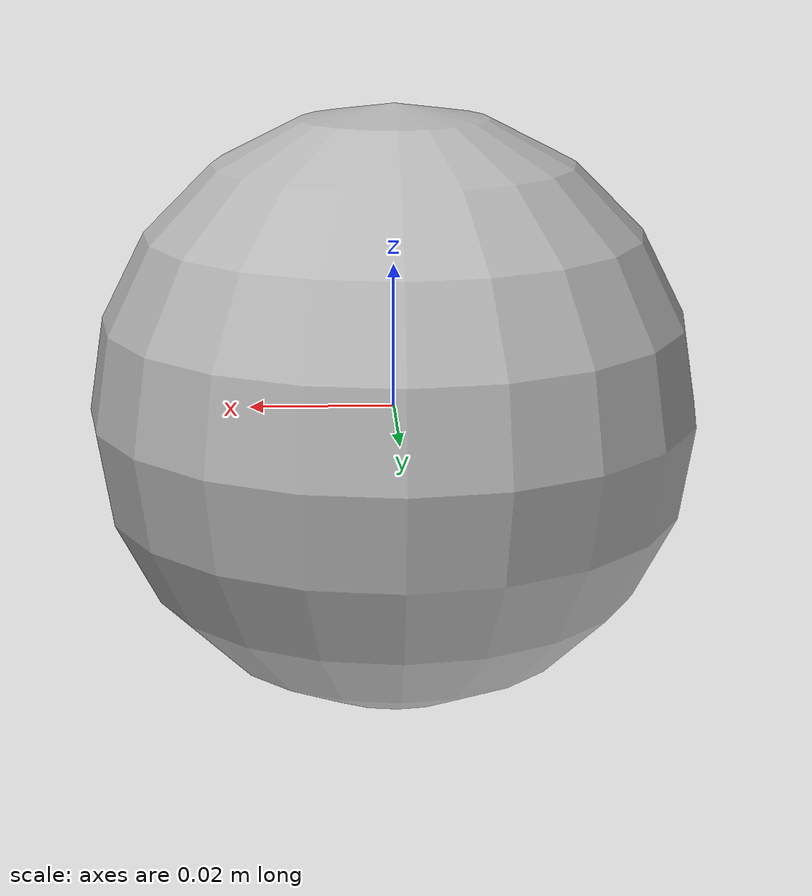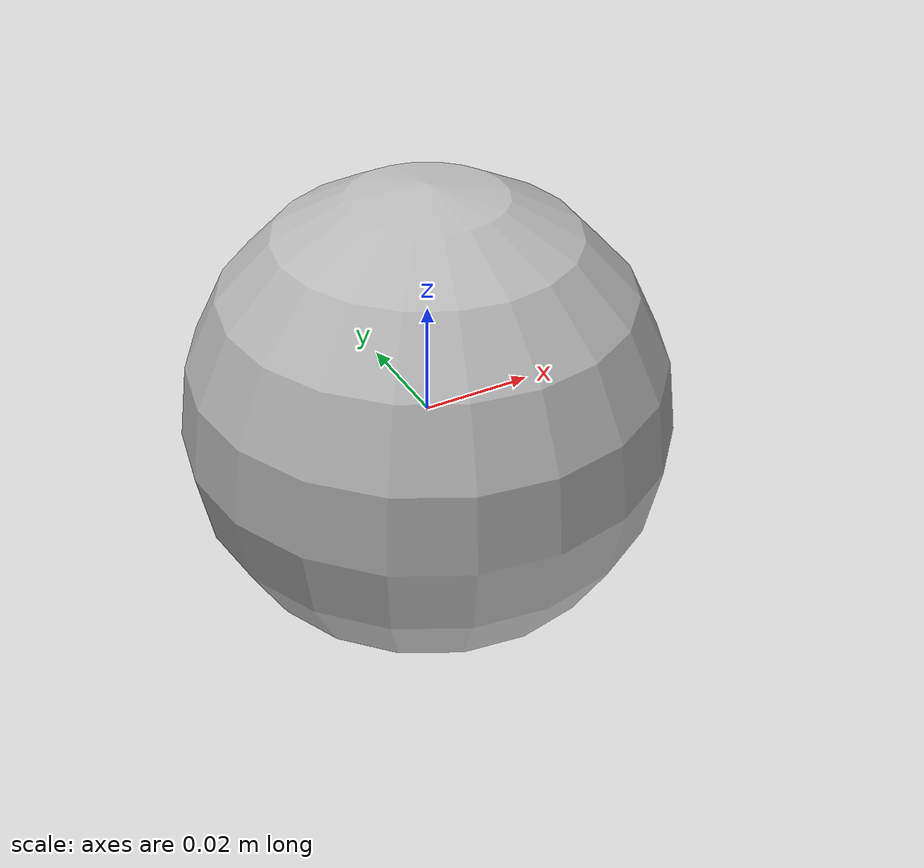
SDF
<?xml version="1.0"?>
<!-- GENERATED by src/gvs_arm/generate_sdf.py from src/gvs_arm/params.py.
     Do not edit by hand: regenerate, and a test asserts byte-equality. -->
<sdf version="1.9">
  <model name="gvs_pushrod9_o2">

    <link name="base"><inertial><mass>0.027027027</mass><inertia><ixx>1.90702703e-05</ixx><ixy>0</ixy><ixz>0</ixz><iyy>1.90702703e-05</iyy><iyz>0</iyz><izz>1.90702703e-05</izz></inertia></inertial></link>

    <!-- segment 0: the sphere radius follows the taper -->
    <link name="seg0_sub0">
      <inertial><mass>0.027027027</mass><inertia><ixx>1.90702703e-05</ixx><ixy>0</ixy><ixz>0</ixz><iyy>1.90702703e-05</iyy><iyz>0</iyz><izz>1.90702703e-05</izz></inertia></inertial>
      <collision name="seg0_sub0_collision"><geometry>
        <sphere><radius>0.042</radius></sphere>
      </geometry></collision>
      <visual name="seg0_sub0_visual"><geometry>
        <sphere><radius>0.042</radius></sphere>
      </geometry></visual>
    </link>
    <link name="seg0_sub1">
      <inertial><mass>0.027027027</mass><inertia><ixx>1.85442192e-05</ixx><ixy>0</ixy><ixz>0</ixz><iyy>1.85442192e-05</iyy><iyz>0</iyz><izz>1.85442192e-05</izz></inertia></inertial>
      <collision name="seg0_sub1_collision"><geometry>
        <sphere><radius>0.0414166667</radius></sphere>
      </geometry></collision>
      <visual name="seg0_sub1_visual"><geometry>
        <sphere><radius>0.0414166667</radius></sphere>
      </geometry></visual>
    </link>
    <link name="seg0_sub2">
      <inertial><mass>0.027027027</mass><inertia><ixx>1.80255255e-05</ixx><ixy>0</ixy><ixz>0</ixz><iyy>1.80255255e-05</iyy><iyz>0</iyz><izz>1.80255255e-05</izz></inertia></inertial>
      <collision name="seg0_sub2_collision"><geometry>
        <sphere><radius>0.0408333333</radius></sphere>
      </geometry></collision>
      <visual name="seg0_sub2_visual"><geometry>
        <sphere><radius>0.0408333333</radius></sphere>
      </geometry></visual>
    </link>
    <link name="seg0_sub3">
      <inertial><mass>0.027027027</mass><inertia><ixx>1.75141892e-05</ixx><ixy>0</ixy><ixz>0</ixz><iyy>1.75141892e-05</iyy><iyz>0</iyz><izz>1.75141892e-05</izz></inertia></inertial>
      <collision name="seg0_sub3_collision"><geometry>
        <sphere><radius>0.04025</radius></sphere>
      </geometry></collision>
      <visual name="seg0_sub3_visual"><geometry>
        <sphere><radius>0.04025</radius></sphere>
      </geometry></visual>
    </link>
    <link name="seg0_sub4">
      <inertial><mass>0.027027027</mass><inertia><ixx>1.70102102e-05</ixx><ixy>0</ixy><ixz>0</ixz><iyy>1.70102102e-05</iyy><iyz>0</iyz><izz>1.70102102e-05</izz></inertia></inertial>
      <collision name="seg0_sub4_collision"><geometry>
        <sphere><radius>0.0396666667</radius></sphere>
      </geometry></collision>
      <visual name="seg0_sub4_visual"><geometry>
        <sphere><radius>0.0396666667</radius></sphere>
      </geometry></visual>
    </link>
    <link name="seg0_sub5">
      <inertial><mass>0.027027027</mass><inertia><ixx>1.65135886e-05</ixx><ixy>0</ixy><ixz>0</ixz><iyy>1.65135886e-05</iyy><iyz>0</iyz><izz>1.65135886e-05</izz></inertia></inertial>
      <collision name="seg0_sub5_collision"><geometry>
        <sphere><radius>0.0390833333</radius></sphere>
      </geometry></collision>
      <visual name="seg0_sub5_visual"><geometry>
        <sphere><radius>0.0390833333</radius></sphere>
      </geometry></visual>
    </link>
    <link name="seg0_sub6">
      <inertial><mass>0.027027027</mass><inertia><ixx>1.60243243e-05</ixx><ixy>0</ixy><ixz>0</ixz><iyy>1.60243243e-05</iyy><iyz>0</iyz><izz>1.60243243e-05</izz></inertia></inertial>
      <collision name="seg0_sub6_collision"><geometry>
        <sphere><radius>0.0385</radius></sphere>
      </geometry></collision>
      <visual name="seg0_sub6_visual"><geometry>
        <sphere><radius>0.0385</radius></sphere>
      </geometry></visual>
    </link>
    <link name="seg0_sub7">
      <inertial><mass>0.027027027</mass><inertia><ixx>1.55424174e-05</ixx><ixy>0</ixy><ixz>0</ixz><iyy>1.55424174e-05</iyy><iyz>0</iyz><izz>1.55424174e-05</izz></inertia></inertial>
      <collision name="seg0_sub7_collision"><geometry>
        <sphere><radius>0.0379166667</radius></sphere>
      </geometry></collision>
      <visual name="seg0_sub7_visual"><geometry>
        <sphere><radius>0.0379166667</radius></sphere>
      </geometry></visual>
    </link>
    <link name="seg0_sub8">
      <inertial><mass>0.027027027</mass><inertia><ixx>1.50678679e-05</ixx><ixy>0</ixy><ixz>0</ixz><iyy>1.50678679e-05</iyy><iyz>0</iyz><izz>1.50678679e-05</izz></inertia></inertial>
      <collision name="seg0_sub8_collision"><geometry>
        <sphere><radius>0.0373333333</radius></sphere>
      </geometry></collision>
      <visual name="seg0_sub8_visual"><geometry>
        <sphere><radius>0.0373333333</radius></sphere>
      </geometry></visual>
    </link>
    <link name="seg0_sub9">
      <inertial><mass>0.027027027</mass><inertia><ixx>1.46006757e-05</ixx><ixy>0</ixy><ixz>0</ixz><iyy>1.46006757e-05</iyy><iyz>0</iyz><izz>1.46006757e-05</izz></inertia></inertial>
      <collision name="seg0_sub9_collision"><geometry>
        <sphere><radius>0.03675</radius></sphere>
      </geometry></collision>
      <visual name="seg0_sub9_visual"><geometry>
        <sphere><radius>0.03675</radius></sphere>
      </geometry></visual>
    </link>
    <link name="seg0_sub10">
      <inertial><mass>0.027027027</mass><inertia><ixx>1.41408408e-05</ixx><ixy>0</ixy><ixz>0</ixz><iyy>1.41408408e-05</iyy><iyz>0</iyz><izz>1.41408408e-05</izz></inertia></inertial>
      <collision name="seg0_sub10_collision"><geometry>
        <sphere><radius>0.0361666667</radius></sphere>
      </geometry></collision>
      <visual name="seg0_sub10_visual"><geometry>
        <sphere><radius>0.0361666667</radius></sphere>
      </geometry></visual>
    </link>
    <link name="seg0_sub11">
      <inertial><mass>0.027027027</mass><inertia><ixx>1.36883634e-05</ixx><ixy>0</ixy><ixz>0</ixz><iyy>1.36883634e-05</iyy><iyz>0</iyz><izz>1.36883634e-05</izz></inertia></inertial>
      <collision name="seg0_sub11_collision"><geometry>
        <sphere><radius>0.0355833333</radius></sphere>
      </geometry></collision>
      <visual name="seg0_sub11_visual"><geometry>
        <sphere><radius>0.0355833333</radius></sphere>
      </geometry></visual>
    </link>

    <!-- segment 1: the sphere radius follows the taper -->
    <link name="seg1_sub0">
      <inertial><mass>0.027027027</mass><inertia><ixx>1.32432432e-05</ixx><ixy>0</ixy><ixz>0</ixz><iyy>1.32432432e-05</iyy><iyz>0</iyz><izz>1.32432432e-05</izz></inertia></inertial>
      <collision name="seg1_sub0_collision"><geometry>
        <sphere><radius>0.035</radius></sphere>
      </geometry></collision>
      <visual name="seg1_sub0_visual"><geometry>
        <sphere><radius>0.035</radius></sphere>
      </geometry></visual>
    </link>
    <link name="seg1_sub1">
      <inertial><mass>0.027027027</mass><inertia><ixx>1.28054805e-05</ixx><ixy>0</ixy><ixz>0</ixz><iyy>1.28054805e-05</iyy><iyz>0</iyz><izz>1.28054805e-05</izz></inertia></inertial>
      <collision name="seg1_sub1_collision"><geometry>
        <sphere><radius>0.0344166667</radius></sphere>
      </geometry></collision>
      <visual name="seg1_sub1_visual"><geometry>
        <sphere><radius>0.0344166667</radius></sphere>
      </geometry></visual>
    </link>
    <link name="seg1_sub2">
      <inertial><mass>0.027027027</mass><inertia><ixx>1.23750751e-05</ixx><ixy>0</ixy><ixz>0</ixz><iyy>1.23750751e-05</iyy><iyz>0</iyz><izz>1.23750751e-05</izz></inertia></inertial>
      <collision name="seg1_sub2_collision"><geometry>
        <sphere><radius>0.0338333333</radius></sphere>
      </geometry></collision>
      <visual name="seg1_sub2_visual"><geometry>
        <sphere><radius>0.0338333333</radius></sphere>
      </geometry></visual>
    </link>
    <link name="seg1_sub3">
      <inertial><mass>0.027027027</mass><inertia><ixx>1.1952027e-05</ixx><ixy>0</ixy><ixz>0</ixz><iyy>1.1952027e-05</iyy><iyz>0</iyz><izz>1.1952027e-05</izz></inertia></inertial>
      <collision name="seg1_sub3_collision"><geometry>
        <sphere><radius>0.03325</radius></sphere>
      </geometry></collision>
      <visual name="seg1_sub3_visual"><geometry>
        <sphere><radius>0.03325</radius></sphere>
      </geometry></visual>
    </link>
    <link name="seg1_sub4">
      <inertial><mass>0.027027027</mass><inertia><ixx>1.15363363e-05</ixx><ixy>0</ixy><ixz>0</ixz><iyy>1.15363363e-05</iyy><iyz>0</iyz><izz>1.15363363e-05</izz></inertia></inertial>
      <collision name="seg1_sub4_collision"><geometry>
        <sphere><radius>0.0326666667</radius></sphere>
      </geometry></collision>
      <visual name="seg1_sub4_visual"><geometry>
        <sphere><radius>0.0326666667</radius></sphere>
      </geometry></visual>
    </link>
    <link name="seg1_sub5">
      <inertial><mass>0.027027027</mass><inertia><ixx>1.1128003e-05</ixx><ixy>0</ixy><ixz>0</ixz><iyy>1.1128003e-05</iyy><iyz>0</iyz><izz>1.1128003e-05</izz></inertia></inertial>
      <collision name="seg1_sub5_collision"><geometry>
        <sphere><radius>0.0320833333</radius></sphere>
      </geometry></collision>
      <visual name="seg1_sub5_visual"><geometry>
        <sphere><radius>0.0320833333</radius></sphere>
      </geometry></visual>
    </link>
    <link name="seg1_sub6">
      <inertial><mass>0.027027027</mass><inertia><ixx>1.0727027e-05</ixx><ixy>0</ixy><ixz>0</ixz><iyy>1.0727027e-05</iyy><iyz>0</iyz><izz>1.0727027e-05</izz></inertia></inertial>
      <collision name="seg1_sub6_collision"><geometry>
        <sphere><radius>0.0315</radius></sphere>
      </geometry></collision>
      <visual name="seg1_sub6_visual"><geometry>
        <sphere><radius>0.0315</radius></sphere>
      </geometry></visual>
    </link>
    <link name="seg1_sub7">
      <inertial><mass>0.027027027</mass><inertia><ixx>1.03334084e-05</ixx><ixy>0</ixy><ixz>0</ixz><iyy>1.03334084e-05</iyy><iyz>0</iyz><izz>1.03334084e-05</izz></inertia></inertial>
      <collision name="seg1_sub7_collision"><geometry>
        <sphere><radius>0.0309166667</radius></sphere>
      </geometry></collision>
      <visual name="seg1_sub7_visual"><geometry>
        <sphere><radius>0.0309166667</radius></sphere>
      </geometry></visual>
    </link>
    <link name="seg1_sub8">
      <inertial><mass>0.027027027</mass><inertia><ixx>9.94714715e-06</ixx><ixy>0</ixy><ixz>0</ixz><iyy>9.94714715e-06</iyy><iyz>0</iyz><izz>9.94714715e-06</izz></inertia></inertial>
      <collision name="seg1_sub8_collision"><geometry>
        <sphere><radius>0.0303333333</radius></sphere>
      </geometry></collision>
      <visual name="seg1_sub8_visual"><geometry>
        <sphere><radius>0.0303333333</radius></sphere>
      </geometry></visual>
    </link>
    <link name="seg1_sub9">
      <inertial><mass>0.027027027</mass><inertia><ixx>9.56824324e-06</ixx><ixy>0</ixy><ixz>0</ixz><iyy>9.56824324e-06</iyy><iyz>0</iyz><izz>9.56824324e-06</izz></inertia></inertial>
      <collision name="seg1_sub9_collision"><geometry>
        <sphere><radius>0.02975</radius></sphere>
      </geometry></collision>
      <visual name="seg1_sub9_visual"><geometry>
        <sphere><radius>0.02975</radius></sphere>
      </geometry></visual>
    </link>
    <link name="seg1_sub10">
      <inertial><mass>0.027027027</mass><inertia><ixx>9.1966967e-06</ixx><ixy>0</ixy><ixz>0</ixz><iyy>9.1966967e-06</iyy><iyz>0</iyz><izz>9.1966967e-06</izz></inertia></inertial>
      <collision name="seg1_sub10_collision"><geometry>
        <sphere><radius>0.0291666667</radius></sphere>
      </geometry></collision>
      <visual name="seg1_sub10_visual"><geometry>
        <sphere><radius>0.0291666667</radius></sphere>
      </geometry></visual>
    </link>
    <link name="seg1_sub11">
      <inertial><mass>0.027027027</mass><inertia><ixx>8.83250751e-06</ixx><ixy>0</ixy><ixz>0</ixz><iyy>8.83250751e-06</iyy><iyz>0</iyz><izz>8.83250751e-06</izz></inertia></inertial>
      <collision name="seg1_sub11_collision"><geometry>
        <sphere><radius>0.0285833333</radius></sphere>
      </geometry></collision>
      <visual name="seg1_sub11_visual"><geometry>
        <sphere><radius>0.0285833333</radius></sphere>
      </geometry></visual>
    </link>

    <!-- segment 2: the sphere radius follows the taper -->
    <link name="seg2_sub0">
      <inertial><mass>0.027027027</mass><inertia><ixx>8.47567568e-06</ixx><ixy>0</ixy><ixz>0</ixz><iyy>8.47567568e-06</iyy><iyz>0</iyz><izz>8.47567568e-06</izz></inertia></inertial>
      <collision name="seg2_sub0_collision"><geometry>
        <sphere><radius>0.028</radius></sphere>
      </geometry></collision>
      <visual name="seg2_sub0_visual"><geometry>
        <sphere><radius>0.028</radius></sphere>
      </geometry></visual>
    </link>
    <link name="seg2_sub1">
      <inertial><mass>0.027027027</mass><inertia><ixx>8.1262012e-06</ixx><ixy>0</ixy><ixz>0</ixz><iyy>8.1262012e-06</iyy><iyz>0</iyz><izz>8.1262012e-06</izz></inertia></inertial>
      <collision name="seg2_sub1_collision"><geometry>
        <sphere><radius>0.0274166667</radius></sphere>
      </geometry></collision>
      <visual name="seg2_sub1_visual"><geometry>
        <sphere><radius>0.0274166667</radius></sphere>
      </geometry></visual>
    </link>
    <link name="seg2_sub2">
      <inertial><mass>0.027027027</mass><inertia><ixx>7.78408408e-06</ixx><ixy>0</ixy><ixz>0</ixz><iyy>7.78408408e-06</iyy><iyz>0</iyz><izz>7.78408408e-06</izz></inertia></inertial>
      <collision name="seg2_sub2_collision"><geometry>
        <sphere><radius>0.0268333333</radius></sphere>
      </geometry></collision>
      <visual name="seg2_sub2_visual"><geometry>
        <sphere><radius>0.0268333333</radius></sphere>
      </geometry></visual>
    </link>
    <link name="seg2_sub3">
      <inertial><mass>0.027027027</mass><inertia><ixx>7.44932432e-06</ixx><ixy>0</ixy><ixz>0</ixz><iyy>7.44932432e-06</iyy><iyz>0</iyz><izz>7.44932432e-06</izz></inertia></inertial>
      <collision name="seg2_sub3_collision"><geometry>
        <sphere><radius>0.02625</radius></sphere>
      </geometry></collision>
      <visual name="seg2_sub3_visual"><geometry>
        <sphere><radius>0.02625</radius></sphere>
      </geometry></visual>
    </link>
    <link name="seg2_sub4">
      <inertial><mass>0.027027027</mass><inertia><ixx>7.12192192e-06</ixx><ixy>0</ixy><ixz>0</ixz><iyy>7.12192192e-06</iyy><iyz>0</iyz><izz>7.12192192e-06</izz></inertia></inertial>
      <collision name="seg2_sub4_collision"><geometry>
        <sphere><radius>0.0256666667</radius></sphere>
      </geometry></collision>
      <visual name="seg2_sub4_visual"><geometry>
        <sphere><radius>0.0256666667</radius></sphere>
      </geometry></visual>
    </link>
    <link name="seg2_sub5">
      <inertial><mass>0.027027027</mass><inertia><ixx>6.80187688e-06</ixx><ixy>0</ixy><ixz>0</ixz><iyy>6.80187688e-06</iyy><iyz>0</iyz><izz>6.80187688e-06</izz></inertia></inertial>
      <collision name="seg2_sub5_collision"><geometry>
        <sphere><radius>0.0250833333</radius></sphere>
      </geometry></collision>
      <visual name="seg2_sub5_visual"><geometry>
        <sphere><radius>0.0250833333</radius></sphere>
      </geometry></visual>
    </link>
    <link name="seg2_sub6">
      <inertial><mass>0.027027027</mass><inertia><ixx>6.48918919e-06</ixx><ixy>0</ixy><ixz>0</ixz><iyy>6.48918919e-06</iyy><iyz>0</iyz><izz>6.48918919e-06</izz></inertia></inertial>
      <collision name="seg2_sub6_collision"><geometry>
        <sphere><radius>0.0245</radius></sphere>
      </geometry></collision>
      <visual name="seg2_sub6_visual"><geometry>
        <sphere><radius>0.0245</radius></sphere>
      </geometry></visual>
    </link>
    <link name="seg2_sub7">
      <inertial><mass>0.027027027</mass><inertia><ixx>6.18385886e-06</ixx><ixy>0</ixy><ixz>0</ixz><iyy>6.18385886e-06</iyy><iyz>0</iyz><izz>6.18385886e-06</izz></inertia></inertial>
      <collision name="seg2_sub7_collision"><geometry>
        <sphere><radius>0.0239166667</radius></sphere>
      </geometry></collision>
      <visual name="seg2_sub7_visual"><geometry>
        <sphere><radius>0.0239166667</radius></sphere>
      </geometry></visual>
    </link>
    <link name="seg2_sub8">
      <inertial><mass>0.027027027</mass><inertia><ixx>5.88588589e-06</ixx><ixy>0</ixy><ixz>0</ixz><iyy>5.88588589e-06</iyy><iyz>0</iyz><izz>5.88588589e-06</izz></inertia></inertial>
      <collision name="seg2_sub8_collision"><geometry>
        <sphere><radius>0.0233333333</radius></sphere>
      </geometry></collision>
      <visual name="seg2_sub8_visual"><geometry>
        <sphere><radius>0.0233333333</radius></sphere>
      </geometry></visual>
    </link>
    <link name="seg2_sub9">
      <inertial><mass>0.027027027</mass><inertia><ixx>5.59527027e-06</ixx><ixy>0</ixy><ixz>0</ixz><iyy>5.59527027e-06</iyy><iyz>0</iyz><izz>5.59527027e-06</izz></inertia></inertial>
      <collision name="seg2_sub9_collision"><geometry>
        <sphere><radius>0.02275</radius></sphere>
      </geometry></collision>
      <visual name="seg2_sub9_visual"><geometry>
        <sphere><radius>0.02275</radius></sphere>
      </geometry></visual>
    </link>
    <link name="seg2_sub10">
      <inertial><mass>0.027027027</mass><inertia><ixx>5.31201201e-06</ixx><ixy>0</ixy><ixz>0</ixz><iyy>5.31201201e-06</iyy><iyz>0</iyz><izz>5.31201201e-06</izz></inertia></inertial>
      <collision name="seg2_sub10_collision"><geometry>
        <sphere><radius>0.0221666667</radius></sphere>
      </geometry></collision>
      <visual name="seg2_sub10_visual"><geometry>
        <sphere><radius>0.0221666667</radius></sphere>
      </geometry></visual>
    </link>
    <link name="seg2_sub11">
      <inertial><mass>0.027027027</mass><inertia><ixx>5.03611111e-06</ixx><ixy>0</ixy><ixz>0</ixz><iyy>5.03611111e-06</iyy><iyz>0</iyz><izz>5.03611111e-06</izz></inertia></inertial>
      <collision name="seg2_sub11_collision"><geometry>
        <sphere><radius>0.0215833333</radius></sphere>
      </geometry></collision>
      <visual name="seg2_sub11_visual"><geometry>
        <sphere><radius>0.0215833333</radius></sphere>
      </geometry></visual>
    </link>

    <link name="gvs_tip_link">
      <inertial><mass>0.027027027</mass><inertia><ixx>4.76756757e-06</ixx><ixy>0</ixy><ixz>0</ixz><iyy>4.76756757e-06</iyy><iyz>0</iyz><izz>4.76756757e-06</izz></inertia></inertial>
      <collision name="gvs_tip_link_collision"><geometry>
        <sphere><radius>0.021</radius></sphere>
      </geometry></collision>
      <visual name="gvs_tip_link_visual"><geometry>
        <sphere><radius>0.021</radius></sphere>
      </geometry></visual>
    </link>
    <frame name="gvs_tip" attached_to="gvs_tip_link">
      <pose relative_to="gvs_tip_link">0 0 0 0 1.5707963267948966 0</pose>
    </frame>

    <drake:collision_filter_group name="seg0"><drake:member>seg0_sub0</drake:member><drake:member>seg0_sub1</drake:member><drake:member>seg0_sub2</drake:member><drake:member>seg0_sub3</drake:member><drake:member>seg0_sub4</drake:member><drake:member>seg0_sub5</drake:member><drake:member>seg0_sub6</drake:member><drake:member>seg0_sub7</drake:member><drake:member>seg0_sub8</drake:member><drake:member>seg0_sub9</drake:member><drake:member>seg0_sub10</drake:member><drake:member>seg0_sub11</drake:member><drake:ignored_collision_filter_group>seg0</drake:ignored_collision_filter_group><drake:ignored_collision_filter_group>seg1</drake:ignored_collision_filter_group></drake:collision_filter_group>
    <drake:collision_filter_group name="seg1"><drake:member>seg1_sub0</drake:member><drake:member>seg1_sub1</drake:member><drake:member>seg1_sub2</drake:member><drake:member>seg1_sub3</drake:member><drake:member>seg1_sub4</drake:member><drake:member>seg1_sub5</drake:member><drake:member>seg1_sub6</drake:member><drake:member>seg1_sub7</drake:member><drake:member>seg1_sub8</drake:member><drake:member>seg1_sub9</drake:member><drake:member>seg1_sub10</drake:member><drake:member>seg1_sub11</drake:member><drake:ignored_collision_filter_group>seg1</drake:ignored_collision_filter_group><drake:ignored_collision_filter_group>seg2</drake:ignored_collision_filter_group></drake:collision_filter_group>
    <drake:collision_filter_group name="seg2"><drake:member>seg2_sub0</drake:member><drake:member>seg2_sub1</drake:member><drake:member>seg2_sub2</drake:member><drake:member>seg2_sub3</drake:member><drake:member>seg2_sub4</drake:member><drake:member>seg2_sub5</drake:member><drake:member>seg2_sub6</drake:member><drake:member>seg2_sub7</drake:member><drake:member>seg2_sub8</drake:member><drake:member>seg2_sub9</drake:member><drake:member>seg2_sub10</drake:member><drake:member>seg2_sub11</drake:member><drake:member>gvs_tip_link</drake:member><drake:ignored_collision_filter_group>seg2</drake:ignored_collision_filter_group></drake:collision_filter_group>
  </model>
</sdf>
